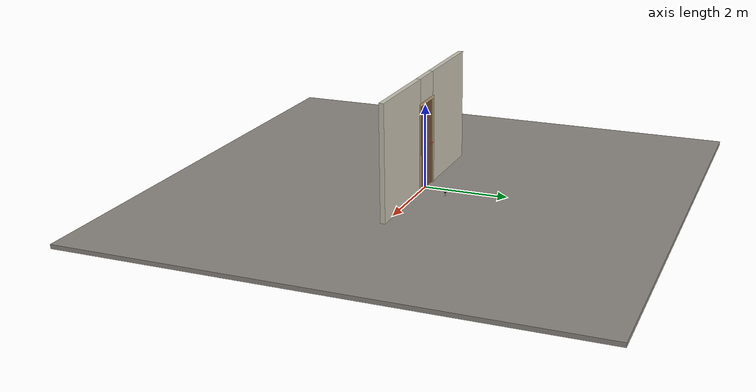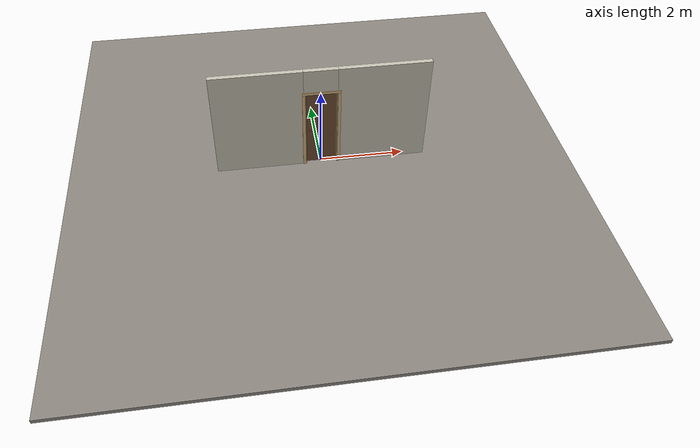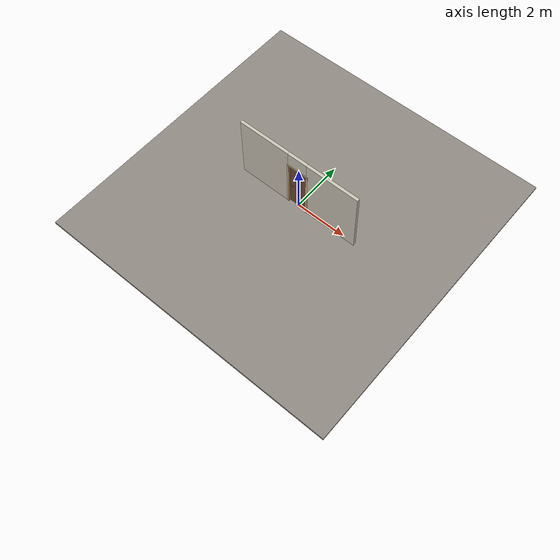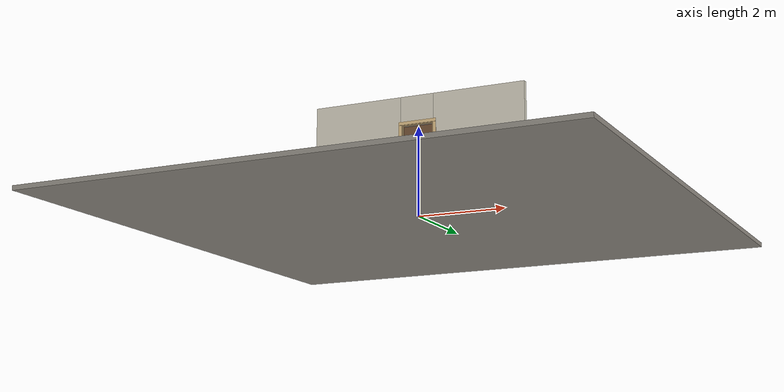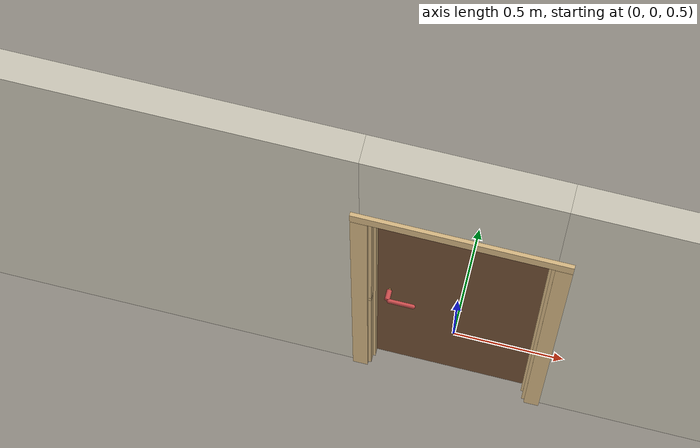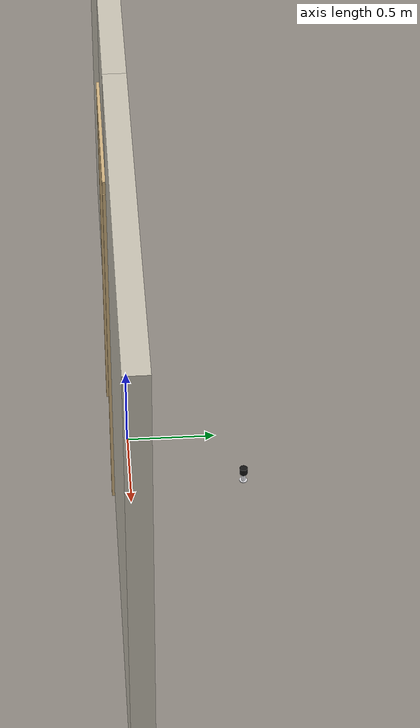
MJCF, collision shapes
<?xml version="1.0" ?>
<mujoco model="db0803_swing_single_full">
  <compiler angle="radian" meshdir="../../hardware" texturedir="../../textures" autolimits="true" inertiafromgeom="false"/>
  <option timestep="0.002" integrator="implicitfast" cone="elliptic" impratio="10" noslip_iterations="3">
    <flag multiccd="enable"/>
  </option>
  <size memory="16M"/>
  <default>
    <geom condim="4" solref="0.005 1" solimp="0.95 0.99 0.001"/>
    <joint solreflimit="0.005 1" solimplimit="0.95 0.99 0.001"/>
    <tendon solreflimit="0.005 1"/>
    <equality solref="0.002 1"/>
  </default>
  <visual>
    <headlight ambient="0.4 0.4 0.4" diffuse="0.7 0.7 0.7" specular="0.2 0.2 0.2"/>
    <quality shadowsize="4096"/>
    <map znear="0.01" zfar="60"/>
  </visual>
  <asset>
    <mesh name="hinge_9ae1f9b7de" file="hinge_9ae1f9b7de.obj"/>
    <mesh name="hinge_jamb_50e97ebc96" file="hinge_jamb_50e97ebc96.obj"/>
    <mesh name="lever_9f02b544cf" file="lever_9f02b544cf.obj"/>
    <material name="mat_floor" rgba="0.55 0.53 0.5 1" specular="0.2" shininess="0.15" reflectance="0"/>
    <material name="mat_wall" rgba="0.78 0.76 0.7 1" specular="0.2" shininess="0.1" reflectance="0"/>
    <material name="mat_leaf" rgba="0.427 0.297 0.194 1" specular="0.2" shininess="0.45" reflectance="0"/>
    <material name="mat_hinge" rgba="0.65 0.66 0.68 1" specular="0.74" shininess="0.5" reflectance="0.36"/>
    <material name="mat_op_brass_antique" rgba="0.55 0.42 0.22 1" specular="0.74" shininess="0.45" reflectance="0.36"/>
    <material name="mat_trim" rgba="0.85 0.66 0.3 1" specular="0.8" shininess="0.75" reflectance="0.4"/>
    <material name="mat_bolt" rgba="0.85 0.66 0.3 1" specular="0.8" shininess="0.75" reflectance="0.4"/>
    <material name="mat_frame" rgba="0.82 0.7 0.5 1" specular="0.2" shininess="0.45" reflectance="0"/>
    <material name="mat_seal" rgba="0.1 0.1 0.1 1" specular="0.2" shininess="0.1" reflectance="0"/>
    <material name="mat_bumper_stop" rgba="0.08 0.08 0.08 1" specular="0.2" shininess="0.1" reflectance="0"/>
    <material name="mat_stop_base" rgba="0.9 0.9 0.92 1" specular="0.8" shininess="0.9" reflectance="0.4"/>
    <texture name="skybox" type="skybox" builtin="gradient" rgb1="0.6 0.7 0.85" rgb2="0.9 0.92 0.95" width="256" height="256"/>
  </asset>
  <worldbody>
    <light name="sun" pos="1.5 -2.5 4" dir="-0.3 0.5 -0.8" directional="true" diffuse="0.8 0.8 0.8" specular="0.3 0.3 0.3" castshadow="true"/>
    <light name="fill" pos="-1.5 2.5 3" dir="0.3 -0.5 -0.7" directional="true" diffuse="0.35 0.35 0.4" castshadow="false"/>
    <camera name="robot_view" pos="0 -2.572687 1.734312" xyaxes="1 0 0 0 0.26963 0.962964" fovy="52"/>
    <camera name="far_view" pos="0 2.511687 1.734312" xyaxes="-1 0 0 0 -0.26963 0.962964" fovy="52"/>
    <camera name="iso" pos="-1.932062 -2.165938 2.141063" xyaxes="0.741536 -0.670913 0 0.242917 0.268487 0.932151" fovy="46"/>
    <camera name="detail_handle" pos="-0.0145 -0.875 1.296" xyaxes="0.97561 0.219512 0 -0.070934 0.315262 0.94635" fovy="38"/>
    <geom name="floor" type="box" size="6 6 0.05" pos="0 0 -0.05" material="mat_floor" group="0" contype="1" conaffinity="1" friction="0.8 0.005 0.0001" density="2400"/>
    <geom name="wall_left" type="box" size="1.04575 0.0575 1.35" pos="-1.45425 -0.0305 1.35" material="mat_wall" group="0" contype="1" conaffinity="1" friction="0.6 0.005 0.0001" density="800"/>
    <geom name="wall_right" type="box" size="1.06075 0.0575 1.35" pos="1.43925 -0.0305 1.35" material="mat_wall" group="0" contype="1" conaffinity="1" friction="0.6 0.005 0.0001" density="800"/>
    <geom name="wall_header" type="box" size="0.3935 0.0575 0.303" pos="-0.015 -0.0305 2.397" material="mat_wall" group="0" contype="1" conaffinity="1" friction="0.6 0.005 0.0001" density="800"/>
    <geom name="hinge_0_jamb" type="mesh" mesh="hinge_jamb_50e97ebc96" pos="0.3565 0.027 0.259" quat="0 0 0 1" material="mat_hinge" group="1" contype="0" conaffinity="0" density="7850"/>
    <geom name="hinge_1_jamb" type="mesh" mesh="hinge_jamb_50e97ebc96" pos="0.3565 0.027 1.025" quat="0 0 0 1" material="mat_hinge" group="1" contype="0" conaffinity="0" density="7850"/>
    <geom name="hinge_2_jamb" type="mesh" mesh="hinge_jamb_50e97ebc96" pos="0.3565 0.027 1.861" quat="0 0 0 1" material="mat_hinge" group="1" contype="0" conaffinity="0" density="7850"/>
    <geom name="jamb_hinge" type="box" size="0.0095 0.0575 1.0225" pos="0.369 -0.0305 1.0225" material="mat_frame" group="0" contype="1" conaffinity="1" friction="0.6 0.005 0.0001" density="400"/>
    <geom name="strike_1016_wall_n" type="box" size="0.0245 0.040075 0.0167" pos="-0.384 -0.047925 1.016" material="mat_frame" group="0" contype="1" conaffinity="1" friction="0.6 0.005 0.0001" density="400"/>
    <geom name="strike_1016_wall_p" type="box" size="0.0245 0.008 0.0167" pos="-0.384 0.01585 1.016" material="mat_frame" group="0" contype="1" conaffinity="1" friction="0.6 0.005 0.0001" density="400"/>
    <geom name="strike_1016_ramp" type="box" size="0.0245 0.01649 0.0167" pos="-0.388636 0.028673 1.016" quat="0.977148 0 0 0.212558" material="mat_frame" group="0" contype="1" conaffinity="1" friction="0.12 0.005 0.0001" density="400"/>
    <geom name="strike_1016_back" type="box" size="0.01615 0.00785 0.0167" pos="-0.39235 0 1.016" material="mat_frame" group="0" contype="1" conaffinity="1" friction="0.6 0.005 0.0001" density="400"/>
    <geom name="jamb_strike_0" type="box" size="0.0245 0.0575 0.49965" pos="-0.384 -0.0305 0.49965" material="mat_frame" group="0" contype="1" conaffinity="1" friction="0.6 0.005 0.0001" density="400"/>
    <geom name="jamb_strike_1" type="box" size="0.0245 0.0575 0.50615" pos="-0.384 -0.0305 1.53885" material="mat_frame" group="0" contype="1" conaffinity="1" friction="0.6 0.005 0.0001" density="400"/>
    <geom name="jamb_head" type="box" size="0.3935 0.0575 0.0095" pos="-0.015 -0.0305 2.0545" material="mat_frame" group="0" contype="1" conaffinity="1" friction="0.6 0.005 0.0001" density="400"/>
    <geom name="head_stud" type="box" size="0.3935 0.0575 0.015" pos="-0.015 -0.0305 2.079" material="mat_wall" group="0" contype="1" conaffinity="1" friction="0.6 0.005 0.0001" density="500"/>
    <geom name="stop_hinge" type="box" size="0.0055 0.016 1.0225" pos="0.354 -0.0365 1.0225" material="mat_frame" group="0" contype="1" conaffinity="1" friction="0.6 0.005 0.0001" density="400"/>
    <geom name="stop_strike" type="box" size="0.0055 0.016 1.0225" pos="-0.354 -0.0365 1.0225" material="mat_frame" group="0" contype="1" conaffinity="1" friction="0.6 0.005 0.0001" density="400"/>
    <geom name="stop_head" type="box" size="0.3595 0.016 0.0055" pos="0 -0.0365 2.0395" material="mat_frame" group="0" contype="1" conaffinity="1" friction="0.6 0.005 0.0001" density="400"/>
    <geom name="seal_hinge" type="box" size="0.004 0.0015 1.0225" pos="0.3565 -0.0215 1.0225" material="mat_seal" group="1" contype="0" conaffinity="0" density="1100"/>
    <geom name="seal_strike" type="box" size="0.004 0.0015 1.0225" pos="-0.3565 -0.0215 1.0225" material="mat_seal" group="1" contype="0" conaffinity="0" density="1100"/>
    <geom name="seal_head" type="box" size="0.3395 0.0015 0.008" pos="0 -0.0215 2.033" material="mat_seal" group="1" contype="0" conaffinity="0" density="1100"/>
    <geom name="casing_l_n" type="box" size="0.035 0.008 1.032" pos="-0.4085 -0.096 1.0225" material="mat_frame" group="2" contype="0" conaffinity="0" density="400"/>
    <geom name="casing_r_n" type="box" size="0.035 0.008 1.032" pos="0.4085 -0.096 1.0225" material="mat_frame" group="2" contype="0" conaffinity="0" density="400"/>
    <geom name="casing_h_n" type="box" size="0.4435 0.008 0.035" pos="0 -0.096 2.094" material="mat_frame" group="2" contype="0" conaffinity="0" density="400"/>
    <geom name="casing_l_p" type="box" size="0.035 0.008 1.032" pos="-0.4085 0.035 1.0225" material="mat_frame" group="2" contype="0" conaffinity="0" density="400"/>
    <geom name="casing_r_p" type="box" size="0.035 0.008 1.032" pos="0.4085 0.035 1.0225" material="mat_frame" group="2" contype="0" conaffinity="0" density="400"/>
    <geom name="casing_h_p" type="box" size="0.4435 0.008 0.035" pos="0 0.035 2.094" material="mat_frame" group="2" contype="0" conaffinity="0" density="400"/>
    <geom name="door_stop_base" type="cylinder" size="0.022 0.003" pos="0.3725 0.63135 0.003" material="mat_stop_base" group="0" contype="1" conaffinity="1" friction="0.6 0.005 0.0001" density="7850"/>
    <geom name="door_stop_post" type="cylinder" size="0.012 0.0245" pos="0.3725 0.63135 0.0305" material="mat_stop_base" group="0" contype="1" conaffinity="1" friction="0.6 0.005 0.0001" density="7850"/>
    <geom name="door_stop_bumper" type="cylinder" size="0.022 0.02" pos="0.3725 0.63135 0.075" material="mat_bumper_stop" group="0" contype="1" conaffinity="1" friction="0.6 0.005 0.0001" density="1100"/>
    <site name="approach_point" pos="0 -1.5 0" quat="1 0 0 0" size="0.05" rgba="0.2 0.9 0.2 0.5" group="4"/>
    <site name="goal_point" pos="0 1.5 0" quat="1 0 0 0" size="0.05" rgba="0.2 0.9 0.2 0.5" group="4"/>
    <site name="door_plane_center" pos="0 0 1.0225" quat="1 0 0 0" size="0.02" rgba="0.2 0.9 0.2 0.5" group="4"/>
    <body name="leaf" pos="0.3595 0 0">
      <inertial pos="-0.354741 0.000255 1.025253" mass="30.443856" quat="0.499558 0.500593 -0.499398 0.500449" diaginertia="1.315779034 10.503443165 11.810822196"/>
      <joint name="leaf_hinge" type="hinge" axis="0 0 -1" pos="-0.003 0.027 0" limited="true" range="0 1.570796" solreflimit="0.02 1" damping="0.143782" frictionloss="0.711212" armature="0.02"/>
      <geom name="leaf_slab" type="box" size="0.3555 0.02 1.016" pos="-0.3585 0 1.025" material="mat_leaf" group="0" contype="1" conaffinity="1" friction="0.35 0.005 0.0001" density="1"/>
      <geom name="hinge_0" type="mesh" mesh="hinge_9ae1f9b7de" pos="-0.003 0.027 0.259" quat="0 0 0 1" material="mat_hinge" group="1" contype="0" conaffinity="0" density="7850"/>
      <geom name="hinge_1" type="mesh" mesh="hinge_9ae1f9b7de" pos="-0.003 0.027 1.025" quat="0 0 0 1" material="mat_hinge" group="1" contype="0" conaffinity="0" density="7850"/>
      <geom name="hinge_2" type="mesh" mesh="hinge_9ae1f9b7de" pos="-0.003 0.027 1.861" quat="0 0 0 1" material="mat_hinge" group="1" contype="0" conaffinity="0" density="7850"/>
      <geom name="leaf_latch_bolt_faceplate" type="box" size="0.0006 0.01235 0.0267" pos="-0.7134 0 1.016" material="mat_bolt" group="1" contype="0" conaffinity="0" density="8500"/>
      <site name="leaf_edge_mid" pos="-0.714 0 1.016" quat="1 0 0 0" size="0.02" rgba="0.2 0.9 0.2 0.5" group="4"/>
      <body name="leaf_handle" pos="-0.654 0 1.016">
        <inertial pos="0.028414 0.000699 0" mass="0.982665" quat="0.711211 0 0 -0.702979" diaginertia="0.001775533 0.003451289 0.005048539"/>
        <joint name="leaf_handle_hinge" type="hinge" axis="0 1 0" limited="true" range="0 0.96" damping="0.200552" frictionloss="0.046" stiffness="0.8" springref="-0.577217" armature="0.01"/>
        <geom name="leaf_handle_spindle" type="cylinder" size="0.006 0.028" pos="0 0 0" quat="0.707107 -0.707107 0 0" material="mat_op_brass_antique" group="1" contype="0" conaffinity="0" density="7850"/>
        <geom name="leaf_handle_lever_n" type="mesh" mesh="lever_9f02b544cf" pos="0 -0.02 0" quat="0 0 -0.707107 0.707107" material="mat_op_brass_antique" group="1" contype="0" conaffinity="0" density="3000"/>
        <geom name="leaf_handle_lever_col_n" type="capsule" size="0.0095 0.053" pos="0.0625 -0.075 0" quat="0.707107 0 0.707107 0" material="mat_op_brass_antique" group="3" contype="1" conaffinity="1" rgba="0.8 0.3 0.3 0.25" friction="0.7 0.01 0.0001" density="3000"/>
        <geom name="leaf_handle_hub_col_n" type="cylinder" size="0.012 0.022" pos="0 -0.05 0" quat="0.707107 -0.707107 0 0" material="mat_op_brass_antique" group="3" contype="1" conaffinity="1" rgba="0.8 0.3 0.3 0.25" friction="0.6 0.005 0.0001" density="3000"/>
        <geom name="leaf_handle_lever_p" type="mesh" mesh="lever_9f02b544cf" pos="0 0.02 0" quat="0 0 0.707107 0.707107" material="mat_op_brass_antique" group="1" contype="0" conaffinity="0" density="3000"/>
        <geom name="leaf_handle_lever_col_p" type="capsule" size="0.0095 0.053" pos="0.0625 0.075 0" quat="0.707107 0 0.707107 0" material="mat_op_brass_antique" group="3" contype="1" conaffinity="1" rgba="0.8 0.3 0.3 0.25" friction="0.7 0.01 0.0001" density="3000"/>
        <geom name="leaf_handle_hub_col_p" type="cylinder" size="0.012 0.022" pos="0 0.05 0" quat="0.707107 -0.707107 0 0" material="mat_op_brass_antique" group="3" contype="1" conaffinity="1" rgba="0.8 0.3 0.3 0.25" friction="0.6 0.005 0.0001" density="3000"/>
        <geom name="leaf_handle_turn_button_p" type="cylinder" size="0.006 0.005" pos="0 0.0855 0" quat="0.707107 -0.707107 0 0" material="mat_trim" group="1" contype="0" conaffinity="0" density="7100"/>
        <site name="leaf_handle_grip_n" pos="0.1 -0.075 0" quat="1 0 0 0" size="0.012" rgba="0.2 0.9 0.2 0.5" group="4"/>
        <site name="leaf_handle_grip_p" pos="0.1 0.075 0" quat="1 0 0 0" size="0.012" rgba="0.2 0.9 0.2 0.5" group="4"/>
      </body>
      <body name="leaf_latch_bolt" pos="-0.714 0 1.016">
        <inertial pos="0.00865 0 0" mass="0.041419" quat="0.92388 0.382683 0 0" diaginertia="0.000000798 0.000005598 0.000005598"/>
        <joint name="leaf_latch_bolt_slide" type="slide" axis="1 0 0" limited="true" range="0 0.0127" damping="2" frictionloss="0.3" stiffness="300" springref="-0.008333" armature="0.1"/>
        <geom name="leaf_latch_bolt_capsule" type="capsule" size="0.00635 0.015" pos="0.00865 0 0" quat="0.707107 0 -0.707107 0" material="mat_bolt" group="0" contype="1" conaffinity="1" friction="0.2 0.005 0.0001" density="8500"/>
      </body>
    </body>
  </worldbody>
  <tendon>
    <fixed name="leaf_latch_bolt_coupling" limited="true" range="0 10">
      <joint joint="leaf_latch_bolt_slide" coef="1"/>
      <joint joint="leaf_handle_hinge" coef="-0.016711"/>
    </fixed>
  </tendon>
  <sensor>
    <jointpos name="leaf_hinge_pos" joint="leaf_hinge"/>
    <jointvel name="leaf_hinge_vel" joint="leaf_hinge"/>
    <jointpos name="leaf_handle_hinge_pos" joint="leaf_handle_hinge"/>
    <jointvel name="leaf_handle_hinge_vel" joint="leaf_handle_hinge"/>
    <jointpos name="leaf_latch_bolt_slide_pos" joint="leaf_latch_bolt_slide"/>
    <jointvel name="leaf_latch_bolt_slide_vel" joint="leaf_latch_bolt_slide"/>
  </sensor>
</mujoco>
